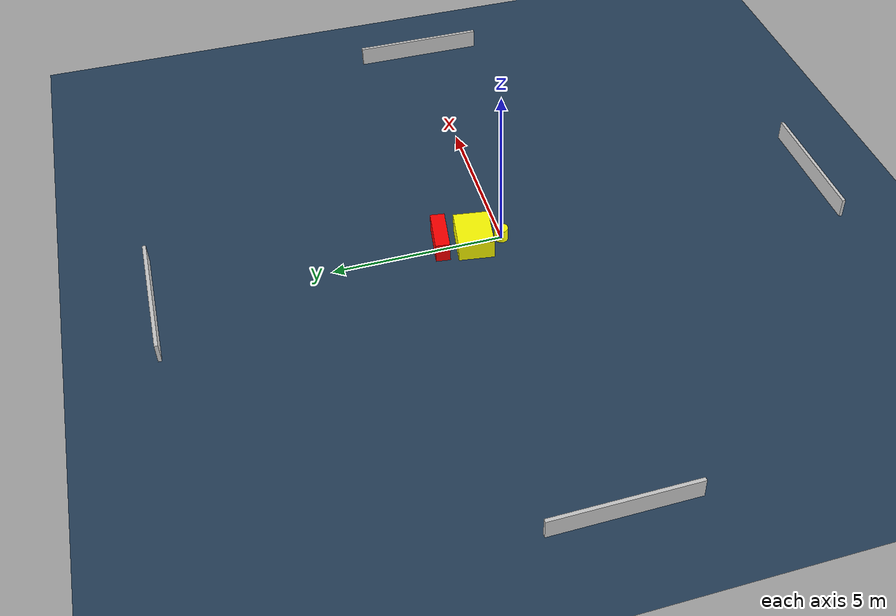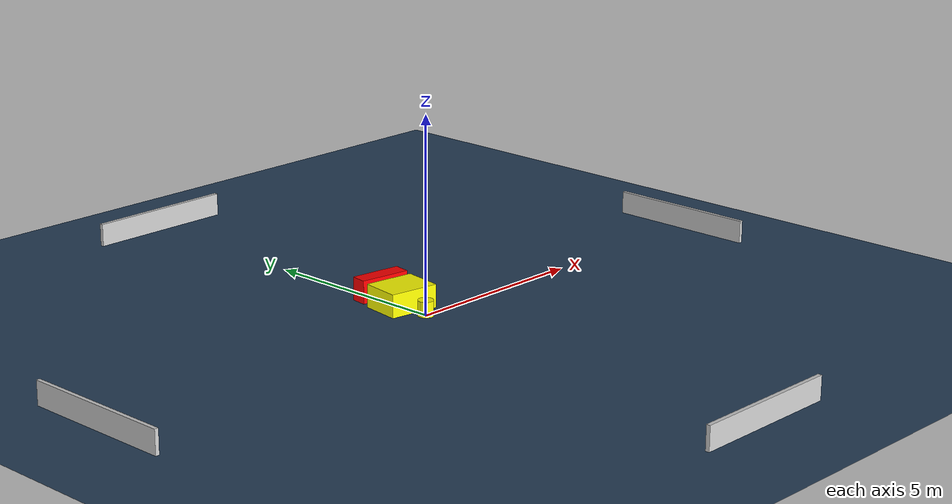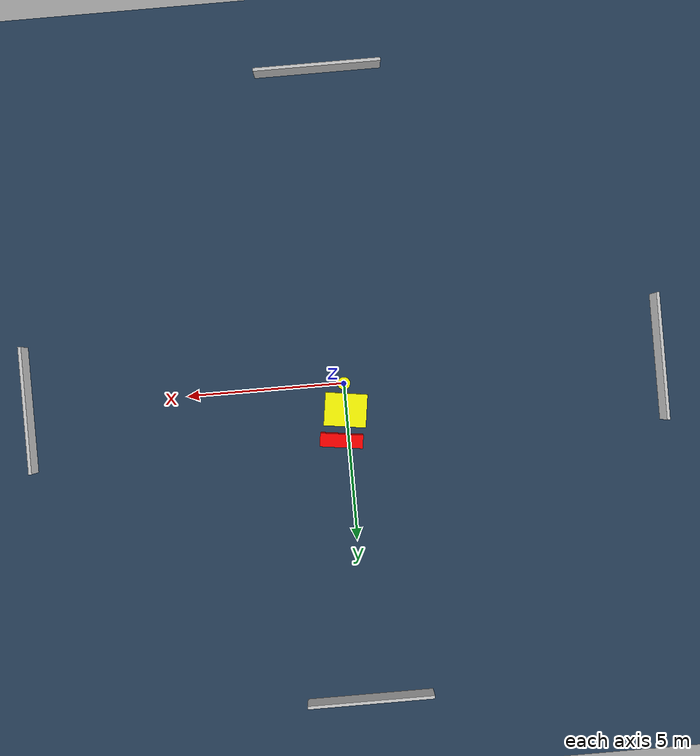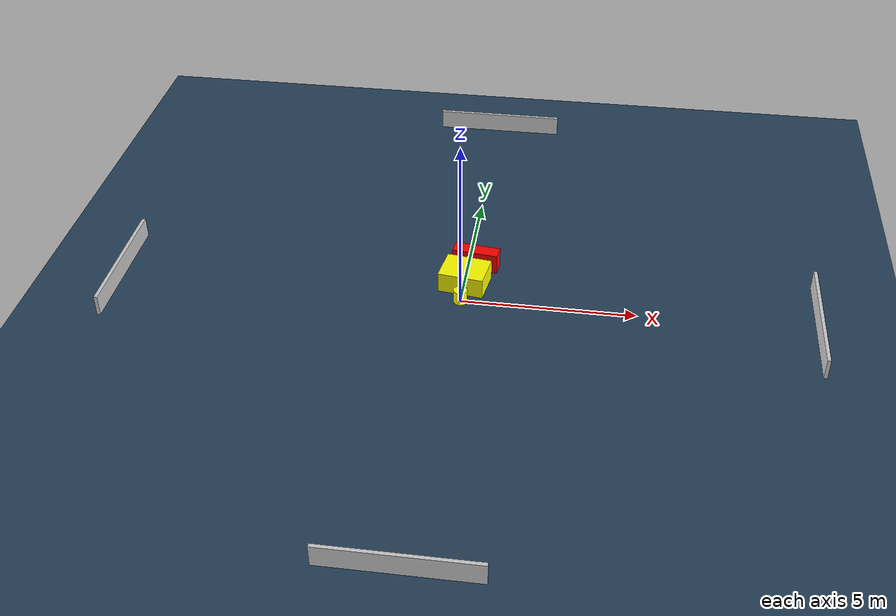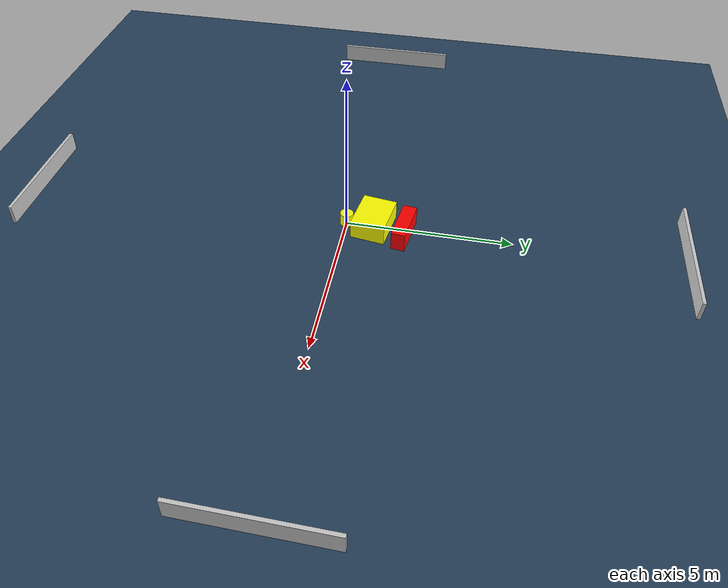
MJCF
<?xml version="1.0" ?>
<mujoco model="generated_environment">
  <option timestep="0.01" integrator="RK4" cone="elliptic"/>
  <default>
    <geom density="1"/>
  </default>
  <asset>
    <texture builtin="gradient" height="3072" name="skybox" rgb1="0.3 0.5 0.7" rgb2="0 0 0" type="skybox" width="512"/>
    <texture builtin="checker" height="300" name="groundplane" rgb1="0.2 0.3 0.4" rgb2="0.1 0.2 0.3" type="2d" width="300"/>
    <material name="groundplane" reflectance="0.2" texrepeat="5 5" texture="groundplane"/>
  </asset>
  <worldbody>
    <light dir="0 0 -1" directional="true" pos="0 0 1.5"/>
    <geom condim="3" friction="0.5 0.005 0.001" material="groundplane" name="floor" pos="0 0 0" size="0 0 0.05" type="plane"/>
    <body name="walls">
      <geom name="wall_1" condim="4" pos="-10.0 0.0 0.3" rgba="0.800000011920929 0.800000011920929 0.800000011920929 1.0" size="0.05 2.0 0.3" type="box"/>
      <geom name="wall_2" condim="4" pos="10.0 0.0 0.3" rgba="0.800000011920929 0.800000011920929 0.800000011920929 1.0" size="0.05 2.0 0.3" type="box"/>
      <geom name="wall_3" condim="4" pos="0.0 -10.0 0.3" rgba="0.800000011920929 0.800000011920929 0.800000011920929 1.0" size="2.0 0.05 0.3" type="box"/>
      <geom name="wall_4" condim="4" pos="0.0 10.0 0.3" rgba="0.800000011920929 0.800000011920929 0.800000011920929 1.0" size="2.0 0.05 0.3" type="box"/>
    </body>
    <body name="robot">
      <joint name="joint_x" type="slide" pos="0 0 0" axis="1 0 0"/>
      <joint name="joint_y" type="slide" pos="0 0 0" axis="0 1 0"/>
      <geom name="robot" type="cylinder" pos="0.0 0.0 0.2" size="0.2 0.2 0.0" mass="5.0" friction="1.0 0.005 0.0001" condim="4" rgba="1.0 1.0 0.0 1.0"/>
    </body>
    <body name="obstacle_1_movable">
      <geom name="obstacle_1_movable" condim="4" pos="0.01786208091225463 0.833776960452367 0.3" euler="0 0 261.83552310200673" friction="0.0 0.005 0.001" rgba="1.0 1.0 0.0 1.0" size="0.519968764588726 0.659872416415142 0.3" type="box" mass="0.1"/>
      <joint type="free"/>
    </body>
    <body name="obstacle_2_static">
      <geom name="obstacle_2_static" condim="4" pos="0.22737438843168137 1.7814053127809812 0.3" euler="0 0 82.31664442971832" friction="0.0 0.005 0.001" rgba="1.0 0.0 0.0 1.0" size="0.21079530125201018 0.6732288782712958 0.3" type="box"/>
    </body>
  </worldbody>
  <actuator>
    <motor name="actuator_x" joint="joint_x" gear="1" ctrlrange="-1 1"/>
    <motor name="actuator_y" joint="joint_y" gear="1" ctrlrange="-1 1"/>
  </actuator>
</mujoco>
